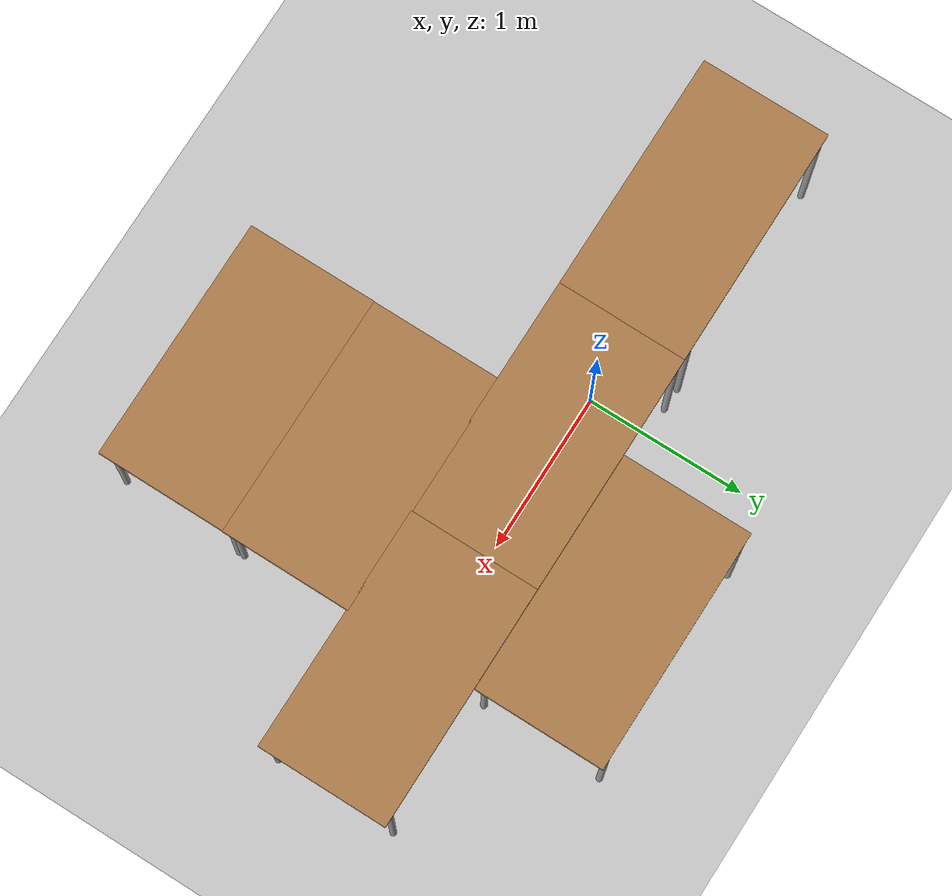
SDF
<sdf version="1.4">
 <world name="default">
  <light name="sun" type="directional">
   <pose>0 0 10 0 -0 0</pose>
   <diffuse>0.8 0.8 0.8 1</diffuse>
   <specular>0.2 0.2 0.2 1</specular>
   <attenuation>
    <range>1000</range>
    <constant>0.9</constant>
    <linear>0.01</linear>
    <quadratic>0.001</quadratic>
   </attenuation>
   <direction>-0.5 0.1 -0.9</direction>
  </light>
  <model name="ground_plane">
   <static>1</static>
   <link name="link">
    <collision name="collision">
     <geometry><plane><normal>0 0 1</normal><size>100 100</size></plane></geometry>
     <surface><friction><ode><mu>100</mu><mu2>50</mu2></ode></friction></surface>
    </collision>
    <visual name="visual">
     <cast_shadows>0</cast_shadows>
     <geometry><plane><normal>0 0 1</normal><size>100 100</size></plane></geometry>
     <material>
      <script><uri>file://media/materials/scripts/gazebo.material</uri><name>Gazebo/Grey</name></script>
     </material>
    </visual>
    <velocity_decay><linear>0</linear><angular>0</angular></velocity_decay>
   </link>
  </model>
  <physics type="ode">
   <max_step_size>0.01</max_step_size>
   <real_time_factor>1</real_time_factor>
   <real_time_update_rate>100</real_time_update_rate>
   <gravity>0 0 -9.8</gravity>
  </physics>
  <scene><ambient>0.4 0.4 0.4 1</ambient><background>0.7 0.7 0.7 1</background><shadows>1</shadows></scene>
  <model name="table">
   <static>1</static>
   <link name="link">
    <collision name="surface">
     <pose>0 0 1 0 -0 0</pose>
     <geometry><box><size>1.5 0.8 0.03</size></box></geometry>
    </collision>
    <visual name="visual1">
     <pose>0 0 1 0 -0 0</pose>
     <geometry><box><size>1.5 0.8 0.03</size></box></geometry>
     <material>
      <script><uri>file://media/materials/scripts/gazebo.material</uri><name>Gazebo/Wood</name></script>
     </material>
    </visual>
    <collision name="front_left_leg">
     <pose>0.68 0.38 0.5 0 -0 0</pose>
     <geometry><cylinder><radius>0.02</radius><length>1</length></cylinder></geometry>
    </collision>
    <visual name="front_left_leg">
     <pose>0.68 0.38 0.5 0 -0 0</pose>
     <geometry><cylinder><radius>0.02</radius><length>1</length></cylinder></geometry>
     <material>
      <script><uri>file://media/materials/scripts/gazebo.material</uri><name>Gazebo/Grey</name></script>
     </material>
    </visual>
    <collision name="front_right_leg">
     <pose>0.68 -0.38 0.5 0 -0 0</pose>
     <geometry><cylinder><radius>0.02</radius><length>1</length></cylinder></geometry>
    </collision>
    <visual name="front_right_leg">
     <pose>0.68 -0.38 0.5 0 -0 0</pose>
     <geometry><cylinder><radius>0.02</radius><length>1</length></cylinder></geometry>
     <material>
      <script><uri>file://media/materials/scripts/gazebo.material</uri><name>Gazebo/Grey</name></script>
     </material>
    </visual>
    <collision name="back_right_leg">
     <pose>-0.68 -0.38 0.5 0 -0 0</pose>
     <geometry><cylinder><radius>0.02</radius><length>1</length></cylinder></geometry>
    </collision>
    <visual name="back_right_leg">
     <pose>-0.68 -0.38 0.5 0 -0 0</pose>
     <geometry><cylinder><radius>0.02</radius><length>1</length></cylinder></geometry>
     <material>
      <script><uri>file://media/materials/scripts/gazebo.material</uri><name>Gazebo/Grey</name></script>
     </material>
    </visual>
    <collision name="back_left_leg">
     <pose>-0.68 0.38 0.5 0 -0 0</pose>
     <geometry><cylinder><radius>0.02</radius><length>1</length></cylinder></geometry>
    </collision>
    <visual name="back_left_leg">
     <pose>-0.68 0.38 0.5 0 -0 0</pose>
     <geometry><cylinder><radius>0.02</radius><length>1</length></cylinder></geometry>
     <material>
      <script><uri>file://media/materials/scripts/gazebo.material</uri><name>Gazebo/Grey</name></script>
     </material>
    </visual>
    <velocity_decay><linear>0</linear><angular>0</angular></velocity_decay>
   </link>
   <pose>-1 0 0 0 -0 0</pose>
  </model>
  <model name="table_0">
   <static>1</static>
   <link name="link">
    <collision name="surface">
     <pose>0 0 1 0 -0 0</pose>
     <geometry><box><size>1.5 0.8 0.03</size></box></geometry>
    </collision>
    <visual name="visual1">
     <pose>0 0 1 0 -0 0</pose>
     <geometry><box><size>1.5 0.8 0.03</size></box></geometry>
     <material>
      <script><uri>file://media/materials/scripts/gazebo.material</uri><name>Gazebo/Wood</name></script>
     </material>
    </visual>
    <collision name="front_left_leg">
     <pose>0.68 0.38 0.5 0 -0 0</pose>
     <geometry><cylinder><radius>0.02</radius><length>1</length></cylinder></geometry>
    </collision>
    <visual name="front_left_leg">
     <pose>0.68 0.38 0.5 0 -0 0</pose>
     <geometry><cylinder><radius>0.02</radius><length>1</length></cylinder></geometry>
     <material>
      <script><uri>file://media/materials/scripts/gazebo.material</uri><name>Gazebo/Grey</name></script>
     </material>
    </visual>
    <collision name="front_right_leg">
     <pose>0.68 -0.38 0.5 0 -0 0</pose>
     <geometry><cylinder><radius>0.02</radius><length>1</length></cylinder></geometry>
    </collision>
    <visual name="front_right_leg">
     <pose>0.68 -0.38 0.5 0 -0 0</pose>
     <geometry><cylinder><radius>0.02</radius><length>1</length></cylinder></geometry>
     <material>
      <script><uri>file://media/materials/scripts/gazebo.material</uri><name>Gazebo/Grey</name></script>
     </material>
    </visual>
    <collision name="back_right_leg">
     <pose>-0.68 -0.38 0.5 0 -0 0</pose>
     <geometry><cylinder><radius>0.02</radius><length>1</length></cylinder></geometry>
    </collision>
    <visual name="back_right_leg">
     <pose>-0.68 -0.38 0.5 0 -0 0</pose>
     <geometry><cylinder><radius>0.02</radius><length>1</length></cylinder></geometry>
     <material>
      <script><uri>file://media/materials/scripts/gazebo.material</uri><name>Gazebo/Grey</name></script>
     </material>
    </visual>
    <collision name="back_left_leg">
     <pose>-0.68 0.38 0.5 0 -0 0</pose>
     <geometry><cylinder><radius>0.02</radius><length>1</length></cylinder></geometry>
    </collision>
    <visual name="back_left_leg">
     <pose>-0.68 0.38 0.5 0 -0 0</pose>
     <geometry><cylinder><radius>0.02</radius><length>1</length></cylinder></geometry>
     <material>
      <script><uri>file://media/materials/scripts/gazebo.material</uri><name>Gazebo/Grey</name></script>
     </material>
    </visual>
    <velocity_decay><linear>0</linear><angular>0</angular></velocity_decay>
   </link>
   <pose>0.497781 0 0 0 -0 0</pose>
  </model>
  <model name="table_1">
   <static>1</static>
   <link name="link">
    <collision name="surface">
     <pose>0 0 1 0 -0 0</pose>
     <geometry><box><size>1.5 0.8 0.03</size></box></geometry>
    </collision>
    <visual name="visual1">
     <pose>0 0 1 0 -0 0</pose>
     <geometry><box><size>1.5 0.8 0.03</size></box></geometry>
     <material>
      <script><uri>file://media/materials/scripts/gazebo.material</uri><name>Gazebo/Wood</name></script>
     </material>
    </visual>
    <collision name="front_left_leg">
     <pose>0.68 0.38 0.5 0 -0 0</pose>
     <geometry><cylinder><radius>0.02</radius><length>1</length></cylinder></geometry>
    </collision>
    <visual name="front_left_leg">
     <pose>0.68 0.38 0.5 0 -0 0</pose>
     <geometry><cylinder><radius>0.02</radius><length>1</length></cylinder></geometry>
     <material>
      <script><uri>file://media/materials/scripts/gazebo.material</uri><name>Gazebo/Grey</name></script>
     </material>
    </visual>
    <collision name="front_right_leg">
     <pose>0.68 -0.38 0.5 0 -0 0</pose>
     <geometry><cylinder><radius>0.02</radius><length>1</length></cylinder></geometry>
    </collision>
    <visual name="front_right_leg">
     <pose>0.68 -0.38 0.5 0 -0 0</pose>
     <geometry><cylinder><radius>0.02</radius><length>1</length></cylinder></geometry>
     <material>
      <script><uri>file://media/materials/scripts/gazebo.material</uri><name>Gazebo/Grey</name></script>
     </material>
    </visual>
    <collision name="back_right_leg">
     <pose>-0.68 -0.38 0.5 0 -0 0</pose>
     <geometry><cylinder><radius>0.02</radius><length>1</length></cylinder></geometry>
    </collision>
    <visual name="back_right_leg">
     <pose>-0.68 -0.38 0.5 0 -0 0</pose>
     <geometry><cylinder><radius>0.02</radius><length>1</length></cylinder></geometry>
     <material>
      <script><uri>file://media/materials/scripts/gazebo.material</uri><name>Gazebo/Grey</name></script>
     </material>
    </visual>
    <collision name="back_left_leg">
     <pose>-0.68 0.38 0.5 0 -0 0</pose>
     <geometry><cylinder><radius>0.02</radius><length>1</length></cylinder></geometry>
    </collision>
    <visual name="back_left_leg">
     <pose>-0.68 0.38 0.5 0 -0 0</pose>
     <geometry><cylinder><radius>0.02</radius><length>1</length></cylinder></geometry>
     <material>
      <script><uri>file://media/materials/scripts/gazebo.material</uri><name>Gazebo/Grey</name></script>
     </material>
    </visual>
    <velocity_decay><linear>0</linear><angular>0</angular></velocity_decay>
   </link>
   <pose>1.12126 0.802714 0 0 -0 0</pose>
  </model>
  <model name="table_2">
   <static>1</static>
   <link name="link">
    <collision name="surface">
     <pose>0 0 1 0 -0 0</pose>
     <geometry><box><size>1.5 0.8 0.03</size></box></geometry>
    </collision>
    <visual name="visual1">
     <pose>0 0 1 0 -0 0</pose>
     <geometry><box><size>1.5 0.8 0.03</size></box></geometry>
     <material>
      <script><uri>file://media/materials/scripts/gazebo.material</uri><name>Gazebo/Wood</name></script>
     </material>
    </visual>
    <collision name="front_left_leg">
     <pose>0.68 0.38 0.5 0 -0 0</pose>
     <geometry><cylinder><radius>0.02</radius><length>1</length></cylinder></geometry>
    </collision>
    <visual name="front_left_leg">
     <pose>0.68 0.38 0.5 0 -0 0</pose>
     <geometry><cylinder><radius>0.02</radius><length>1</length></cylinder></geometry>
     <material>
      <script><uri>file://media/materials/scripts/gazebo.material</uri><name>Gazebo/Grey</name></script>
     </material>
    </visual>
    <collision name="front_right_leg">
     <pose>0.68 -0.38 0.5 0 -0 0</pose>
     <geometry><cylinder><radius>0.02</radius><length>1</length></cylinder></geometry>
    </collision>
    <visual name="front_right_leg">
     <pose>0.68 -0.38 0.5 0 -0 0</pose>
     <geometry><cylinder><radius>0.02</radius><length>1</length></cylinder></geometry>
     <material>
      <script><uri>file://media/materials/scripts/gazebo.material</uri><name>Gazebo/Grey</name></script>
     </material>
    </visual>
    <collision name="back_right_leg">
     <pose>-0.68 -0.38 0.5 0 -0 0</pose>
     <geometry><cylinder><radius>0.02</radius><length>1</length></cylinder></geometry>
    </collision>
    <visual name="back_right_leg">
     <pose>-0.68 -0.38 0.5 0 -0 0</pose>
     <geometry><cylinder><radius>0.02</radius><length>1</length></cylinder></geometry>
     <material>
      <script><uri>file://media/materials/scripts/gazebo.material</uri><name>Gazebo/Grey</name></script>
     </material>
    </visual>
    <collision name="back_left_leg">
     <pose>-0.68 0.38 0.5 0 -0 0</pose>
     <geometry><cylinder><radius>0.02</radius><length>1</length></cylinder></geometry>
    </collision>
    <visual name="back_left_leg">
     <pose>-0.68 0.38 0.5 0 -0 0</pose>
     <geometry><cylinder><radius>0.02</radius><length>1</length></cylinder></geometry>
     <material>
      <script><uri>file://media/materials/scripts/gazebo.material</uri><name>Gazebo/Grey</name></script>
     </material>
    </visual>
    <velocity_decay><linear>0</linear><angular>0</angular></velocity_decay>
   </link>
   <pose>1.99 0 0 0 -0 0</pose>
  </model>
  <model name="table_3">
   <static>1</static>
   <link name="link">
    <collision name="surface">
     <pose>0 0 1 0 -0 0</pose>
     <geometry><box><size>1.5 0.8 0.03</size></box></geometry>
    </collision>
    <visual name="visual1">
     <pose>0 0 1 0 -0 0</pose>
     <geometry><box><size>1.5 0.8 0.03</size></box></geometry>
     <material>
      <script><uri>file://media/materials/scripts/gazebo.material</uri><name>Gazebo/Wood</name></script>
     </material>
    </visual>
    <collision name="front_left_leg">
     <pose>0.68 0.38 0.5 0 -0 0</pose>
     <geometry><cylinder><radius>0.02</radius><length>1</length></cylinder></geometry>
    </collision>
    <visual name="front_left_leg">
     <pose>0.68 0.38 0.5 0 -0 0</pose>
     <geometry><cylinder><radius>0.02</radius><length>1</length></cylinder></geometry>
     <material>
      <script><uri>file://media/materials/scripts/gazebo.material</uri><name>Gazebo/Grey</name></script>
     </material>
    </visual>
    <collision name="front_right_leg">
     <pose>0.68 -0.38 0.5 0 -0 0</pose>
     <geometry><cylinder><radius>0.02</radius><length>1</length></cylinder></geometry>
    </collision>
    <visual name="front_right_leg">
     <pose>0.68 -0.38 0.5 0 -0 0</pose>
     <geometry><cylinder><radius>0.02</radius><length>1</length></cylinder></geometry>
     <material>
      <script><uri>file://media/materials/scripts/gazebo.material</uri><name>Gazebo/Grey</name></script>
     </material>
    </visual>
    <collision name="back_right_leg">
     <pose>-0.68 -0.38 0.5 0 -0 0</pose>
     <geometry><cylinder><radius>0.02</radius><length>1</length></cylinder></geometry>
    </collision>
    <visual name="back_right_leg">
     <pose>-0.68 -0.38 0.5 0 -0 0</pose>
     <geometry><cylinder><radius>0.02</radius><length>1</length></cylinder></geometry>
     <material>
      <script><uri>file://media/materials/scripts/gazebo.material</uri><name>Gazebo/Grey</name></script>
     </material>
    </visual>
    <collision name="back_left_leg">
     <pose>-0.68 0.38 0.5 0 -0 0</pose>
     <geometry><cylinder><radius>0.02</radius><length>1</length></cylinder></geometry>
    </collision>
    <visual name="back_left_leg">
     <pose>-0.68 0.38 0.5 0 -0 0</pose>
     <geometry><cylinder><radius>0.02</radius><length>1</length></cylinder></geometry>
     <material>
      <script><uri>file://media/materials/scripts/gazebo.material</uri><name>Gazebo/Grey</name></script>
     </material>
    </visual>
    <velocity_decay><linear>0</linear><angular>0</angular></velocity_decay>
   </link>
   <pose>1.1267 -0.790922 0 0 -0 0</pose>
  </model>
  <model name="table_4">
   <static>1</static>
   <link name="link">
    <collision name="surface">
     <pose>0 0 1 0 -0 0</pose>
     <geometry><box><size>1.5 0.8 0.03</size></box></geometry>
    </collision>
    <visual name="visual1">
     <pose>0 0 1 0 -0 0</pose>
     <geometry><box><size>1.5 0.8 0.03</size></box></geometry>
     <material>
      <script><uri>file://media/materials/scripts/gazebo.material</uri><name>Gazebo/Wood</name></script>
     </material>
    </visual>
    <collision name="front_left_leg">
     <pose>0.68 0.38 0.5 0 -0 0</pose>
     <geometry><cylinder><radius>0.02</radius><length>1</length></cylinder></geometry>
    </collision>
    <visual name="front_left_leg">
     <pose>0.68 0.38 0.5 0 -0 0</pose>
     <geometry><cylinder><radius>0.02</radius><length>1</length></cylinder></geometry>
     <material>
      <script><uri>file://media/materials/scripts/gazebo.material</uri><name>Gazebo/Grey</name></script>
     </material>
    </visual>
    <collision name="front_right_leg">
     <pose>0.68 -0.38 0.5 0 -0 0</pose>
     <geometry><cylinder><radius>0.02</radius><length>1</length></cylinder></geometry>
    </collision>
    <visual name="front_right_leg">
     <pose>0.68 -0.38 0.5 0 -0 0</pose>
     <geometry><cylinder><radius>0.02</radius><length>1</length></cylinder></geometry>
     <material>
      <script><uri>file://media/materials/scripts/gazebo.material</uri><name>Gazebo/Grey</name></script>
     </material>
    </visual>
    <collision name="back_right_leg">
     <pose>-0.68 -0.38 0.5 0 -0 0</pose>
     <geometry><cylinder><radius>0.02</radius><length>1</length></cylinder></geometry>
    </collision>
    <visual name="back_right_leg">
     <pose>-0.68 -0.38 0.5 0 -0 0</pose>
     <geometry><cylinder><radius>0.02</radius><length>1</length></cylinder></geometry>
     <material>
      <script><uri>file://media/materials/scripts/gazebo.material</uri><name>Gazebo/Grey</name></script>
     </material>
    </visual>
    <collision name="back_left_leg">
     <pose>-0.68 0.38 0.5 0 -0 0</pose>
     <geometry><cylinder><radius>0.02</radius><length>1</length></cylinder></geometry>
    </collision>
    <visual name="back_left_leg">
     <pose>-0.68 0.38 0.5 0 -0 0</pose>
     <geometry><cylinder><radius>0.02</radius><length>1</length></cylinder></geometry>
     <material>
      <script><uri>file://media/materials/scripts/gazebo.material</uri><name>Gazebo/Grey</name></script>
     </material>
    </visual>
    <velocity_decay><linear>0</linear><angular>0</angular></velocity_decay>
   </link>
   <pose>1.12468 -1.58681 0 0 -0 0</pose>
  </model>
 </world>
</sdf>
